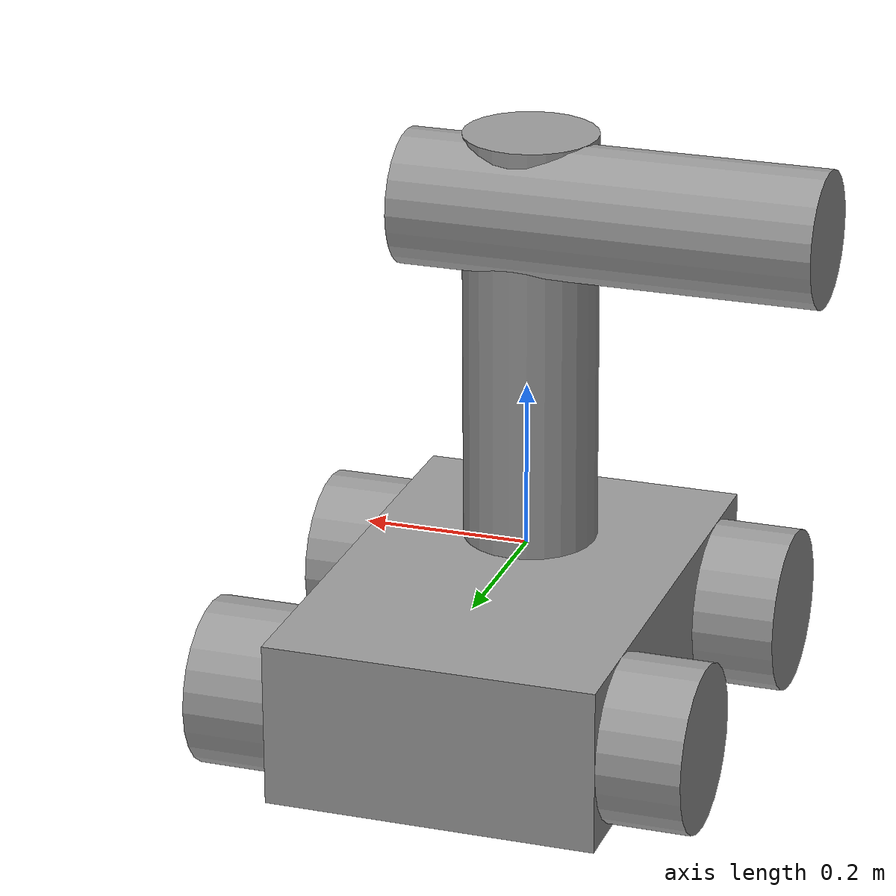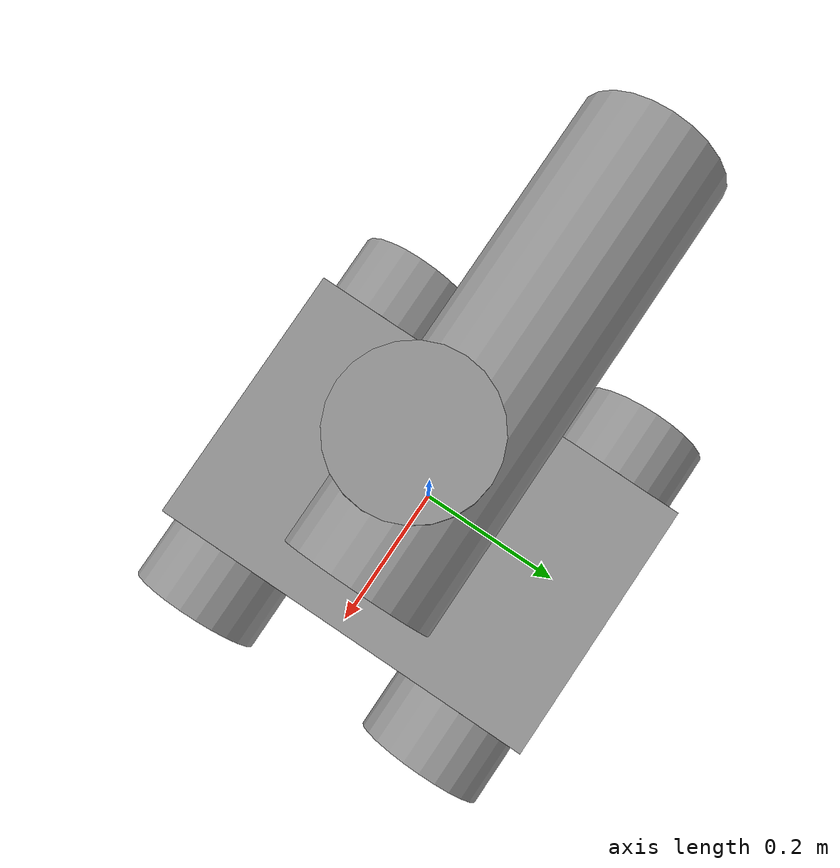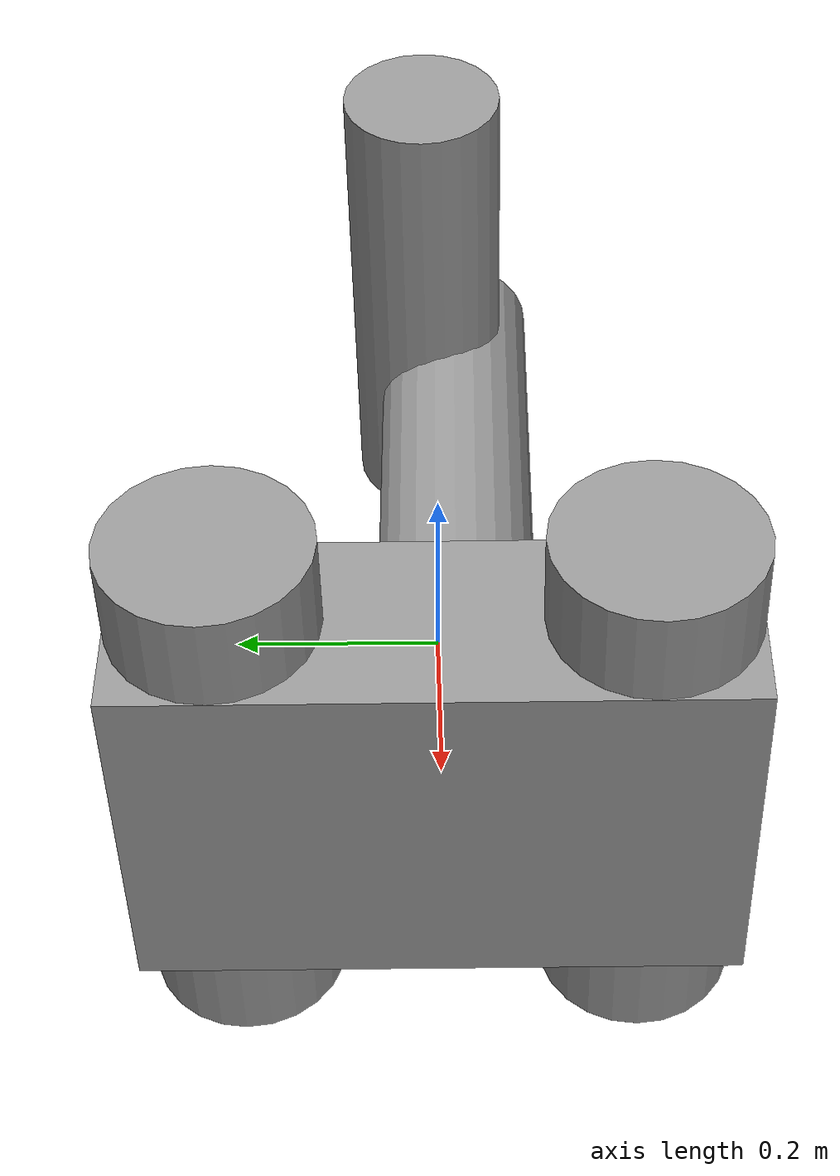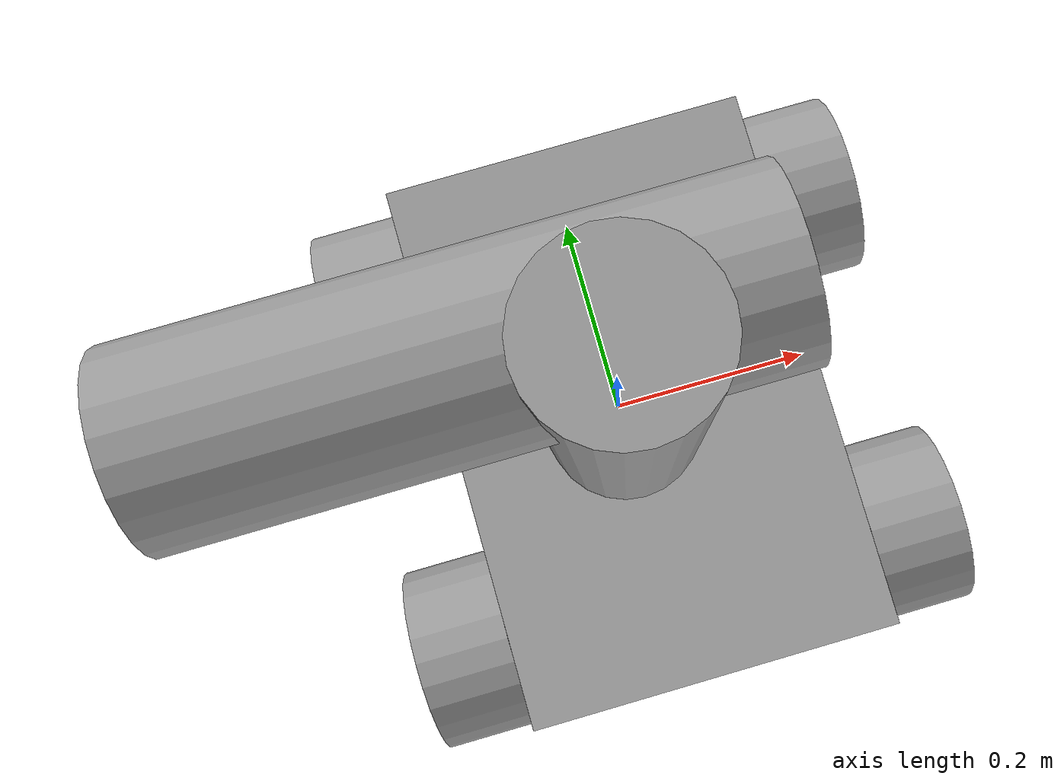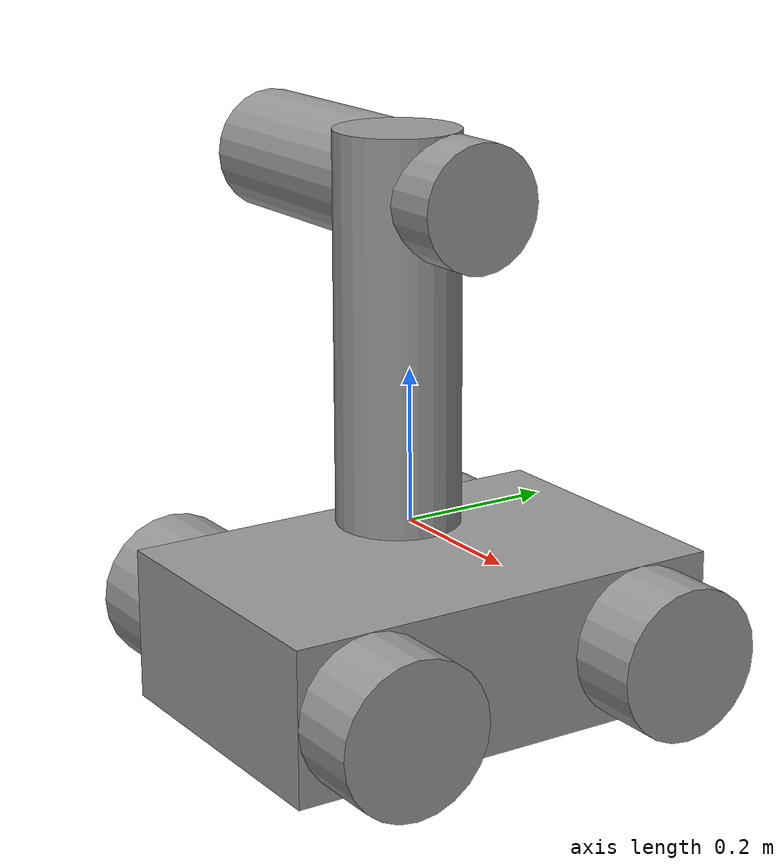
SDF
<?xml version='1.0'?>
<sdf version='1.7'>
  <model name='Robot'>
    <link name='link_0'>
      <inertial>
        <mass>1</mass>
        <inertia>
          <ixx>0.166667</ixx>
          <ixy>0</ixy>
          <ixz>0</ixz>
          <iyy>0.166667</iyy>
          <iyz>0</iyz>
          <izz>0.166667</izz>
        </inertia>
        <pose>0 0 0 0 -0 0</pose>
      </inertial>
      <pose>0.021433 0.001418 -0.135686 0 -0 0</pose>
      <gravity>1</gravity>
      <self_collide>0</self_collide>
      <kinematic>0</kinematic>
      <enable_wind>0</enable_wind>
      <visual name='visual'>
        <pose>0 0 0 0 -0 0</pose>
        <geometry>
          <box>
            <size>0.4 0.6 0.2</size>
          </box>
        </geometry>
        <material>
          <lighting>1</lighting>
          <script>
            <uri>file://media/materials/scripts/gazebo.material</uri>
            <name>Gazebo/Grey</name>
          </script>
          <shader type='pixel'>
            <normal_map>__default__</normal_map>
          </shader>
          <ambient>0.3 0.3 0.3 1</ambient>
          <diffuse>0.7 0.7 0.7 1</diffuse>
          <specular>0.01 0.01 0.01 1</specular>
          <emissive>0 0 0 1</emissive>
        </material>
        <transparency>0</transparency>
        <cast_shadows>1</cast_shadows>
      </visual>
      <collision name='collision'>
        <laser_retro>0</laser_retro>
        <max_contacts>10</max_contacts>
        <pose>0 0 0 0 -0 0</pose>
        <geometry>
          <box>
            <size>0.4 0.6 0.2</size>
          </box>
        </geometry>
        <surface>
          <friction>
            <ode>
              <mu>1</mu>
              <mu2>1</mu2>
              <fdir1>0 0 0</fdir1>
              <slip1>0</slip1>
              <slip2>0</slip2>
            </ode>
            <torsional>
              <coefficient>1</coefficient>
              <patch_radius>0</patch_radius>
              <surface_radius>0</surface_radius>
              <use_patch_radius>1</use_patch_radius>
              <ode>
                <slip>0</slip>
              </ode>
            </torsional>
          </friction>
          <bounce>
            <restitution_coefficient>0</restitution_coefficient>
            <threshold>1e+06</threshold>
          </bounce>
          <contact>
            <collide_without_contact>0</collide_without_contact>
            <collide_without_contact_bitmask>1</collide_without_contact_bitmask>
            <collide_bitmask>1</collide_bitmask>
            <ode>
              <soft_cfm>0</soft_cfm>
              <soft_erp>0.2</soft_erp>
              <kp>1e+13</kp>
              <kd>1</kd>
              <max_vel>0.01</max_vel>
              <min_depth>0</min_depth>
            </ode>
            <bullet>
              <split_impulse>1</split_impulse>
              <split_impulse_penetration_threshold>-0.01</split_impulse_penetration_threshold>
              <soft_cfm>0</soft_cfm>
              <soft_erp>0.2</soft_erp>
              <kp>1e+13</kp>
              <kd>1</kd>
            </bullet>
          </contact>
        </surface>
      </collision>
    </link>
    <link name='link_1'>
      <inertial>
        <mass>1</mass>
        <inertia>
          <ixx>0.145833</ixx>
          <ixy>0</ixy>
          <ixz>0</ixz>
          <iyy>0.145833</iyy>
          <iyz>0</iyz>
          <izz>0.125</izz>
        </inertia>
        <pose>0 0 0 0 -0 0</pose>
      </inertial>
      <pose>0.271625 -0.19847 -0.135686 1.57 -0 1.57</pose>
      <gravity>1</gravity>
      <self_collide>0</self_collide>
      <kinematic>0</kinematic>
      <enable_wind>0</enable_wind>
      <visual name='visual'>
        <pose>0 0 0 0 -0 0</pose>
        <geometry>
          <cylinder>
            <radius>0.1</radius>
            <length>0.1</length>
          </cylinder>
        </geometry>
        <material>
          <lighting>1</lighting>
          <script>
            <uri>file://media/materials/scripts/gazebo.material</uri>
            <name>Gazebo/Grey</name>
          </script>
          <shader type='pixel'>
            <normal_map>__default__</normal_map>
          </shader>
          <ambient>0.3 0.3 0.3 1</ambient>
          <diffuse>0.7 0.7 0.7 1</diffuse>
          <specular>0.01 0.01 0.01 1</specular>
          <emissive>0 0 0 1</emissive>
        </material>
        <transparency>0</transparency>
        <cast_shadows>1</cast_shadows>
      </visual>
      <collision name='collision'>
        <laser_retro>0</laser_retro>
        <max_contacts>10</max_contacts>
        <pose>0 0 0 0 -0 0</pose>
        <geometry>
          <cylinder>
            <radius>0.1</radius>
            <length>0.1</length>
          </cylinder>
        </geometry>
        <surface>
          <friction>
            <ode>
              <mu>1</mu>
              <mu2>1</mu2>
              <fdir1>0 0 0</fdir1>
              <slip1>0</slip1>
              <slip2>0</slip2>
            </ode>
            <torsional>
              <coefficient>1</coefficient>
              <patch_radius>0</patch_radius>
              <surface_radius>0</surface_radius>
              <use_patch_radius>1</use_patch_radius>
              <ode>
                <slip>0</slip>
              </ode>
            </torsional>
          </friction>
          <bounce>
            <restitution_coefficient>0</restitution_coefficient>
            <threshold>1e+06</threshold>
          </bounce>
          <contact>
            <collide_without_contact>0</collide_without_contact>
            <collide_without_contact_bitmask>1</collide_without_contact_bitmask>
            <collide_bitmask>1</collide_bitmask>
            <ode>
              <soft_cfm>0</soft_cfm>
              <soft_erp>0.2</soft_erp>
              <kp>1e+13</kp>
              <kd>1</kd>
              <max_vel>0.01</max_vel>
              <min_depth>0</min_depth>
            </ode>
            <bullet>
              <split_impulse>1</split_impulse>
              <split_impulse_penetration_threshold>-0.01</split_impulse_penetration_threshold>
              <soft_cfm>0</soft_cfm>
              <soft_erp>0.2</soft_erp>
              <kp>1e+13</kp>
              <kd>1</kd>
            </bullet>
          </contact>
        </surface>
      </collision>
    </link>
    <link name='link_1_clone'>
      <inertial>
        <mass>1</mass>
        <inertia>
          <ixx>0.145833</ixx>
          <ixy>0</ixy>
          <ixz>0</ixz>
          <iyy>0.145833</iyy>
          <iyz>0</iyz>
          <izz>0.125</izz>
        </inertia>
        <pose>0 0 0 0 -0 0</pose>
      </inertial>
      <pose>-0.228726 0.201378 -0.135686 1.57 -0 1.57</pose>
      <gravity>1</gravity>
      <self_collide>0</self_collide>
      <kinematic>0</kinematic>
      <enable_wind>0</enable_wind>
      <visual name='visual'>
        <pose>0 0 0 0 -0 0</pose>
        <geometry>
          <cylinder>
            <radius>0.1</radius>
            <length>0.1</length>
          </cylinder>
        </geometry>
        <material>
          <lighting>1</lighting>
          <script>
            <uri>file://media/materials/scripts/gazebo.material</uri>
            <name>Gazebo/Grey</name>
          </script>
          <shader type='pixel'>
            <normal_map>__default__</normal_map>
          </shader>
          <ambient>0.3 0.3 0.3 1</ambient>
          <diffuse>0.7 0.7 0.7 1</diffuse>
          <specular>0.01 0.01 0.01 1</specular>
          <emissive>0 0 0 1</emissive>
        </material>
        <transparency>0</transparency>
        <cast_shadows>1</cast_shadows>
      </visual>
      <collision name='collision'>
        <laser_retro>0</laser_retro>
        <max_contacts>10</max_contacts>
        <pose>0 0 0 0 -0 0</pose>
        <geometry>
          <cylinder>
            <radius>0.1</radius>
            <length>0.1</length>
          </cylinder>
        </geometry>
        <surface>
          <friction>
            <ode>
              <mu>1</mu>
              <mu2>1</mu2>
              <fdir1>0 0 0</fdir1>
              <slip1>0</slip1>
              <slip2>0</slip2>
            </ode>
            <torsional>
              <coefficient>1</coefficient>
              <patch_radius>0</patch_radius>
              <surface_radius>0</surface_radius>
              <use_patch_radius>1</use_patch_radius>
              <ode>
                <slip>0</slip>
              </ode>
            </torsional>
          </friction>
          <bounce>
            <restitution_coefficient>0</restitution_coefficient>
            <threshold>1e+06</threshold>
          </bounce>
          <contact>
            <collide_without_contact>0</collide_without_contact>
            <collide_without_contact_bitmask>1</collide_without_contact_bitmask>
            <collide_bitmask>1</collide_bitmask>
            <ode>
              <soft_cfm>0</soft_cfm>
              <soft_erp>0.2</soft_erp>
              <kp>1e+13</kp>
              <kd>1</kd>
              <max_vel>0.01</max_vel>
              <min_depth>0</min_depth>
            </ode>
            <bullet>
              <split_impulse>1</split_impulse>
              <split_impulse_penetration_threshold>-0.01</split_impulse_penetration_threshold>
              <soft_cfm>0</soft_cfm>
              <soft_erp>0.2</soft_erp>
              <kp>1e+13</kp>
              <kd>1</kd>
            </bullet>
          </contact>
        </surface>
      </collision>
    </link>
    <link name='link_1_clone_0'>
      <inertial>
        <mass>1</mass>
        <inertia>
          <ixx>0.145833</ixx>
          <ixy>0</ixy>
          <ixz>0</ixz>
          <iyy>0.145833</iyy>
          <iyz>0</iyz>
          <izz>0.125</izz>
        </inertia>
        <pose>0 0 0 0 -0 0</pose>
      </inertial>
      <pose>-0.228726 -0.198542 -0.135686 1.57 -0 1.57</pose>
      <gravity>1</gravity>
      <self_collide>0</self_collide>
      <kinematic>0</kinematic>
      <enable_wind>0</enable_wind>
      <visual name='visual'>
        <pose>0 0 0 0 -0 0</pose>
        <geometry>
          <cylinder>
            <radius>0.1</radius>
            <length>0.1</length>
          </cylinder>
        </geometry>
        <material>
          <lighting>1</lighting>
          <script>
            <uri>file://media/materials/scripts/gazebo.material</uri>
            <name>Gazebo/Grey</name>
          </script>
          <shader type='pixel'>
            <normal_map>__default__</normal_map>
          </shader>
          <ambient>0.3 0.3 0.3 1</ambient>
          <diffuse>0.7 0.7 0.7 1</diffuse>
          <specular>0.01 0.01 0.01 1</specular>
          <emissive>0 0 0 1</emissive>
        </material>
        <transparency>0</transparency>
        <cast_shadows>1</cast_shadows>
      </visual>
      <collision name='collision'>
        <laser_retro>0</laser_retro>
        <max_contacts>10</max_contacts>
        <pose>0 0 0 0 -0 0</pose>
        <geometry>
          <cylinder>
            <radius>0.1</radius>
            <length>0.1</length>
          </cylinder>
        </geometry>
        <surface>
          <friction>
            <ode>
              <mu>1</mu>
              <mu2>1</mu2>
              <fdir1>0 0 0</fdir1>
              <slip1>0</slip1>
              <slip2>0</slip2>
            </ode>
            <torsional>
              <coefficient>1</coefficient>
              <patch_radius>0</patch_radius>
              <surface_radius>0</surface_radius>
              <use_patch_radius>1</use_patch_radius>
              <ode>
                <slip>0</slip>
              </ode>
            </torsional>
          </friction>
          <bounce>
            <restitution_coefficient>0</restitution_coefficient>
            <threshold>1e+06</threshold>
          </bounce>
          <contact>
            <collide_without_contact>0</collide_without_contact>
            <collide_without_contact_bitmask>1</collide_without_contact_bitmask>
            <collide_bitmask>1</collide_bitmask>
            <ode>
              <soft_cfm>0</soft_cfm>
              <soft_erp>0.2</soft_erp>
              <kp>1e+13</kp>
              <kd>1</kd>
              <max_vel>0.01</max_vel>
              <min_depth>0</min_depth>
            </ode>
            <bullet>
              <split_impulse>1</split_impulse>
              <split_impulse_penetration_threshold>-0.01</split_impulse_penetration_threshold>
              <soft_cfm>0</soft_cfm>
              <soft_erp>0.2</soft_erp>
              <kp>1e+13</kp>
              <kd>1</kd>
            </bullet>
          </contact>
        </surface>
      </collision>
    </link>
    <link name='link_1_clone_1'>
      <inertial>
        <mass>1</mass>
        <inertia>
          <ixx>0.145833</ixx>
          <ixy>0</ixy>
          <ixz>0</ixz>
          <iyy>0.145833</iyy>
          <iyz>0</iyz>
          <izz>0.125</izz>
        </inertia>
        <pose>0 0 0 0 -0 0</pose>
      </inertial>
      <pose>0.271593 0.201378 -0.135686 1.57 -0 1.57</pose>
      <gravity>1</gravity>
      <self_collide>0</self_collide>
      <kinematic>0</kinematic>
      <enable_wind>0</enable_wind>
      <visual name='visual'>
        <pose>0 0 0 0 -0 0</pose>
        <geometry>
          <cylinder>
            <radius>0.1</radius>
            <length>0.1</length>
          </cylinder>
        </geometry>
        <material>
          <lighting>1</lighting>
          <script>
            <uri>file://media/materials/scripts/gazebo.material</uri>
            <name>Gazebo/Grey</name>
          </script>
          <shader type='pixel'>
            <normal_map>__default__</normal_map>
          </shader>
          <ambient>0.3 0.3 0.3 1</ambient>
          <diffuse>0.7 0.7 0.7 1</diffuse>
          <specular>0.01 0.01 0.01 1</specular>
          <emissive>0 0 0 1</emissive>
        </material>
        <transparency>0</transparency>
        <cast_shadows>1</cast_shadows>
      </visual>
      <collision name='collision'>
        <laser_retro>0</laser_retro>
        <max_contacts>10</max_contacts>
        <pose>0 0 0 0 -0 0</pose>
        <geometry>
          <cylinder>
            <radius>0.1</radius>
            <length>0.1</length>
          </cylinder>
        </geometry>
        <surface>
          <friction>
            <ode>
              <mu>1</mu>
              <mu2>1</mu2>
              <fdir1>0 0 0</fdir1>
              <slip1>0</slip1>
              <slip2>0</slip2>
            </ode>
            <torsional>
              <coefficient>1</coefficient>
              <patch_radius>0</patch_radius>
              <surface_radius>0</surface_radius>
              <use_patch_radius>1</use_patch_radius>
              <ode>
                <slip>0</slip>
              </ode>
            </torsional>
          </friction>
          <bounce>
            <restitution_coefficient>0</restitution_coefficient>
            <threshold>1e+06</threshold>
          </bounce>
          <contact>
            <collide_without_contact>0</collide_without_contact>
            <collide_without_contact_bitmask>1</collide_without_contact_bitmask>
            <collide_bitmask>1</collide_bitmask>
            <ode>
              <soft_cfm>0</soft_cfm>
              <soft_erp>0.2</soft_erp>
              <kp>1e+13</kp>
              <kd>1</kd>
              <max_vel>0.01</max_vel>
              <min_depth>0</min_depth>
            </ode>
            <bullet>
              <split_impulse>1</split_impulse>
              <split_impulse_penetration_threshold>-0.01</split_impulse_penetration_threshold>
              <soft_cfm>0</soft_cfm>
              <soft_erp>0.2</soft_erp>
              <kp>1e+13</kp>
              <kd>1</kd>
            </bullet>
          </contact>
        </surface>
      </collision>
    </link>
    <link name='link_2'>
      <inertial>
        <mass>1</mass>
        <inertia>
          <ixx>0.145833</ixx>
          <ixy>0</ixy>
          <ixz>0</ixz>
          <iyy>0.145833</iyy>
          <iyz>0</iyz>
          <izz>0.125</izz>
        </inertia>
        <pose>0 0 0 0 -0 0</pose>
      </inertial>
      <pose>0.001433 -0.018582 0.254314 0 -0 0</pose>
      <gravity>1</gravity>
      <self_collide>0</self_collide>
      <kinematic>0</kinematic>
      <enable_wind>0</enable_wind>
      <visual name='visual'>
        <pose>0 0 0 0 -0 0</pose>
        <geometry>
          <cylinder>
            <radius>0.08</radius>
            <length>0.5</length>
          </cylinder>
        </geometry>
        <material>
          <lighting>1</lighting>
          <script>
            <uri>file://media/materials/scripts/gazebo.material</uri>
            <name>Gazebo/Grey</name>
          </script>
          <shader type='pixel'>
            <normal_map>__default__</normal_map>
          </shader>
          <ambient>0.3 0.3 0.3 1</ambient>
          <diffuse>0.7 0.7 0.7 1</diffuse>
          <specular>0.01 0.01 0.01 1</specular>
          <emissive>0 0 0 1</emissive>
        </material>
        <transparency>0</transparency>
        <cast_shadows>1</cast_shadows>
      </visual>
      <collision name='collision'>
        <laser_retro>0</laser_retro>
        <max_contacts>10</max_contacts>
        <pose>0 0 0 0 -0 0</pose>
        <geometry>
          <cylinder>
            <radius>0.08</radius>
            <length>0.5</length>
          </cylinder>
        </geometry>
        <surface>
          <friction>
            <ode>
              <mu>1</mu>
              <mu2>1</mu2>
              <fdir1>0 0 0</fdir1>
              <slip1>0</slip1>
              <slip2>0</slip2>
            </ode>
            <torsional>
              <coefficient>1</coefficient>
              <patch_radius>0</patch_radius>
              <surface_radius>0</surface_radius>
              <use_patch_radius>1</use_patch_radius>
              <ode>
                <slip>0</slip>
              </ode>
            </torsional>
          </friction>
          <bounce>
            <restitution_coefficient>0</restitution_coefficient>
            <threshold>1e+06</threshold>
          </bounce>
          <contact>
            <collide_without_contact>0</collide_without_contact>
            <collide_without_contact_bitmask>1</collide_without_contact_bitmask>
            <collide_bitmask>1</collide_bitmask>
            <ode>
              <soft_cfm>0</soft_cfm>
              <soft_erp>0.2</soft_erp>
              <kp>1e+13</kp>
              <kd>1</kd>
              <max_vel>0.01</max_vel>
              <min_depth>0</min_depth>
            </ode>
            <bullet>
              <split_impulse>1</split_impulse>
              <split_impulse_penetration_threshold>-0.01</split_impulse_penetration_threshold>
              <soft_cfm>0</soft_cfm>
              <soft_erp>0.2</soft_erp>
              <kp>1e+13</kp>
              <kd>1</kd>
            </bullet>
          </contact>
        </surface>
      </collision>
    </link>
    <link name='link_2_clone'>
      <inertial>
        <mass>1</mass>
        <inertia>
          <ixx>0.145833</ixx>
          <ixy>0</ixy>
          <ixz>0</ixz>
          <iyy>0.145833</iyy>
          <iyz>0</iyz>
          <izz>0.125</izz>
        </inertia>
        <pose>0 0 0 0 -0 0</pose>
      </inertial>
      <pose>-0.108632 0.011418 0.424115 -0 1.57 2.4e-05</pose>
      <gravity>1</gravity>
      <self_collide>0</self_collide>
      <kinematic>0</kinematic>
      <enable_wind>0</enable_wind>
      <visual name='visual'>
        <pose>0 0 0 0 -0 0</pose>
        <geometry>
          <cylinder>
            <radius>0.08</radius>
            <length>0.5</length>
          </cylinder>
        </geometry>
        <material>
          <lighting>1</lighting>
          <script>
            <uri>file://media/materials/scripts/gazebo.material</uri>
            <name>Gazebo/Grey</name>
          </script>
          <shader type='pixel'>
            <normal_map>__default__</normal_map>
          </shader>
          <ambient>0.3 0.3 0.3 1</ambient>
          <diffuse>0.7 0.7 0.7 1</diffuse>
          <specular>0.01 0.01 0.01 1</specular>
          <emissive>0 0 0 1</emissive>
        </material>
        <transparency>0</transparency>
        <cast_shadows>1</cast_shadows>
      </visual>
      <collision name='collision'>
        <laser_retro>0</laser_retro>
        <max_contacts>10</max_contacts>
        <pose>0 0 0 0 -0 0</pose>
        <geometry>
          <cylinder>
            <radius>0.08</radius>
            <length>0.5</length>
          </cylinder>
        </geometry>
        <surface>
          <friction>
            <ode>
              <mu>1</mu>
              <mu2>1</mu2>
              <fdir1>0 0 0</fdir1>
              <slip1>0</slip1>
              <slip2>0</slip2>
            </ode>
            <torsional>
              <coefficient>1</coefficient>
              <patch_radius>0</patch_radius>
              <surface_radius>0</surface_radius>
              <use_patch_radius>1</use_patch_radius>
              <ode>
                <slip>0</slip>
              </ode>
            </torsional>
          </friction>
          <bounce>
            <restitution_coefficient>0</restitution_coefficient>
            <threshold>1e+06</threshold>
          </bounce>
          <contact>
            <collide_without_contact>0</collide_without_contact>
            <collide_without_contact_bitmask>1</collide_without_contact_bitmask>
            <collide_bitmask>1</collide_bitmask>
            <ode>
              <soft_cfm>0</soft_cfm>
              <soft_erp>0.2</soft_erp>
              <kp>1e+13</kp>
              <kd>1</kd>
              <max_vel>0.01</max_vel>
              <min_depth>0</min_depth>
            </ode>
            <bullet>
              <split_impulse>1</split_impulse>
              <split_impulse_penetration_threshold>-0.01</split_impulse_penetration_threshold>
              <soft_cfm>0</soft_cfm>
              <soft_erp>0.2</soft_erp>
              <kp>1e+13</kp>
              <kd>1</kd>
            </bullet>
          </contact>
        </surface>
      </collision>
    </link>
    <joint name='link_0_JOINT_2' type='revolute'>
      <parent>link_0</parent>
      <child>link_1</child>
      <pose>0 0 0 0 -0 0</pose>
      <axis>
        <xyz>0 0 1</xyz>
        <limit>
          <lower>-1.79769e+308</lower>
          <upper>1.79769e+308</upper>
          <effort>-1</effort>
          <velocity>-1</velocity>
        </limit>
        <dynamics>
          <spring_reference>0</spring_reference>
          <spring_stiffness>0</spring_stiffness>
          <damping>0</damping>
        </dynamics>
      </axis>
      <physics>
        <ode>
          <limit>
            <cfm>0</cfm>
            <erp>0.2</erp>
          </limit>
          <suspension>
            <cfm>0</cfm>
            <erp>0.2</erp>
          </suspension>
        </ode>
      </physics>
    </joint>
    <joint name='link_0_JOINT_3' type='revolute'>
      <parent>link_0</parent>
      <child>link_1_clone_1</child>
      <pose>0 0 0 0 -0 0</pose>
      <axis>
        <xyz>0 0 1</xyz>
        <limit>
          <lower>-1.79769e+308</lower>
          <upper>1.79769e+308</upper>
          <effort>-1</effort>
          <velocity>-1</velocity>
        </limit>
        <dynamics>
          <spring_reference>0</spring_reference>
          <spring_stiffness>0</spring_stiffness>
          <damping>0</damping>
        </dynamics>
      </axis>
      <physics>
        <ode>
          <limit>
            <cfm>0</cfm>
            <erp>0.2</erp>
          </limit>
          <suspension>
            <cfm>0</cfm>
            <erp>0.2</erp>
          </suspension>
        </ode>
      </physics>
    </joint>
    <joint name='link_0_JOINT_4' type='revolute'>
      <parent>link_0</parent>
      <child>link_1_clone_0</child>
      <pose>0 0 0 0 -0 0</pose>
      <axis>
        <xyz>0 0 1</xyz>
        <limit>
          <lower>-1.79769e+308</lower>
          <upper>1.79769e+308</upper>
          <effort>-1</effort>
          <velocity>-1</velocity>
        </limit>
        <dynamics>
          <spring_reference>0</spring_reference>
          <spring_stiffness>0</spring_stiffness>
          <damping>0</damping>
        </dynamics>
      </axis>
      <physics>
        <ode>
          <limit>
            <cfm>0</cfm>
            <erp>0.2</erp>
          </limit>
          <suspension>
            <cfm>0</cfm>
            <erp>0.2</erp>
          </suspension>
        </ode>
      </physics>
    </joint>
    <joint name='link_0_JOINT_5' type='revolute'>
      <parent>link_0</parent>
      <child>link_1_clone</child>
      <pose>0 0 0 0 -0 0</pose>
      <axis>
        <xyz>0 0 1</xyz>
        <limit>
          <lower>-1.79769e+308</lower>
          <upper>1.79769e+308</upper>
          <effort>-1</effort>
          <velocity>-1</velocity>
        </limit>
        <dynamics>
          <spring_reference>0</spring_reference>
          <spring_stiffness>0</spring_stiffness>
          <damping>0</damping>
        </dynamics>
      </axis>
      <physics>
        <ode>
          <limit>
            <cfm>0</cfm>
            <erp>0.2</erp>
          </limit>
          <suspension>
            <cfm>0</cfm>
            <erp>0.2</erp>
          </suspension>
        </ode>
      </physics>
    </joint>
    <joint name='link_0_JOINT_6' type='revolute'>
      <parent>link_0</parent>
      <child>link_2</child>
      <pose>0 0 0 0 -0 0</pose>
      <axis>
        <xyz>0 0 1</xyz>
        <limit>
          <lower>-1.79769e+308</lower>
          <upper>1.79769e+308</upper>
          <effort>-1</effort>
          <velocity>-1</velocity>
        </limit>
        <dynamics>
          <spring_reference>0</spring_reference>
          <spring_stiffness>0</spring_stiffness>
          <damping>0</damping>
        </dynamics>
      </axis>
      <physics>
        <ode>
          <limit>
            <cfm>0</cfm>
            <erp>0.2</erp>
          </limit>
          <suspension>
            <cfm>0</cfm>
            <erp>0.2</erp>
          </suspension>
        </ode>
      </physics>
    </joint>
    <joint name='link_2_JOINT_8' type='revolute'>
      <parent>link_2</parent>
      <child>link_2_clone</child>
      <pose>0 0 0 0 -0 0</pose>
      <axis>
        <xyz>0 0 1</xyz>
        <limit>
          <lower>-1.79769e+308</lower>
          <upper>1.79769e+308</upper>
          <effort>-1</effort>
          <velocity>-1</velocity>
        </limit>
        <dynamics>
          <spring_reference>0</spring_reference>
          <spring_stiffness>0</spring_stiffness>
          <damping>0</damping>
        </dynamics>
      </axis>
      <physics>
        <ode>
          <limit>
            <cfm>0</cfm>
            <erp>0.2</erp>
          </limit>
          <suspension>
            <cfm>0</cfm>
            <erp>0.2</erp>
          </suspension>
        </ode>
      </physics>
    </joint>
    <static>0</static>
    <allow_auto_disable>1</allow_auto_disable>
  </model>
</sdf>
